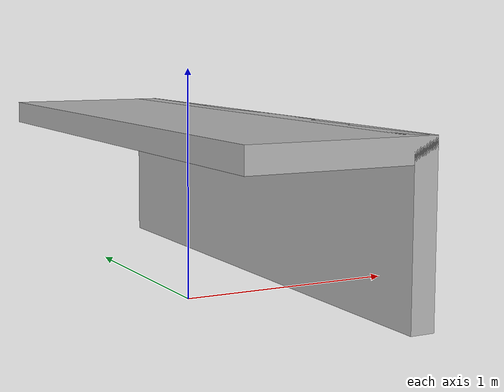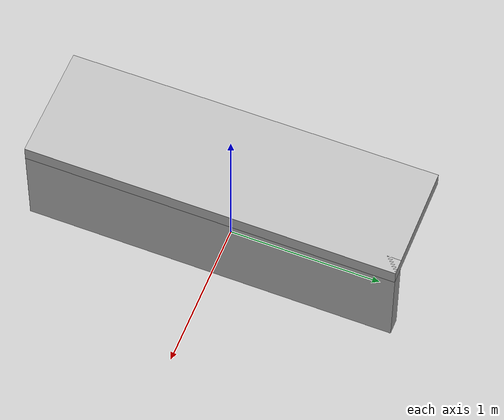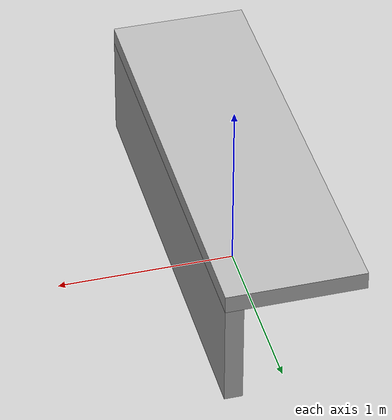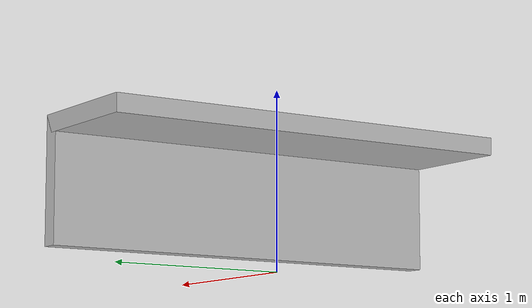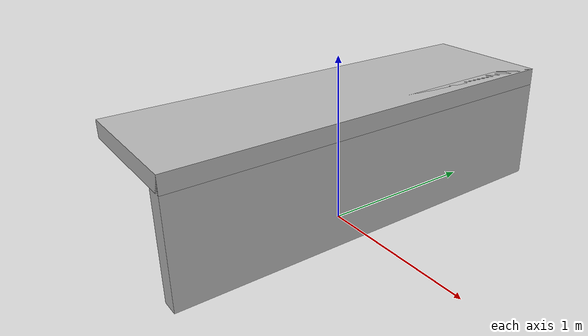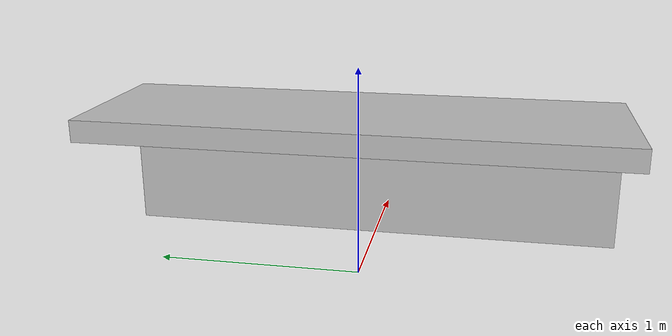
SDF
<?xml version="1.0"?>
<sdf version="1.6">
  <model name="rwc2019/bed">
    <link name="1_link">
      <collision name="1_col">
        <geometry>
          <box>
            <size>0.76 2.42 0.1</size>
          </box>
        </geometry>
      </collision>
      <visual name="1_vis">
        <geometry>
          <box>
            <size>0.76 2.42 0.1</size>
          </box>
        </geometry>
      </visual>
      <pose>0.0 0.0 0.75 0 0 0</pose>
    </link>
    <link name="2_link">
      <collision name="2_col">
        <geometry>
          <box>
            <size>0.1 2.42 0.7</size>
          </box>
        </geometry>
      </collision>
      <visual name="2_vis">
        <geometry>
          <box>
            <size>0.1 2.42 0.7</size>
          </box>
        </geometry>
      </visual>
      <pose>0.33 0.0 0.45 0 0 0</pose>
    </link>
    <link name="on_top_of">
      <virtual_volume name="on_top_of_vv">
        <geometry>
          <box>
            <size>0.72 2.36 0.25</size>
          </box>
        </geometry>
        <pose>0.02 0.0 0.945 0 0 0</pose>
      </virtual_volume>
    </link>
    <link name="in_front_of">
      <virtual_volume name="in_front_of_vv">
        <geometry>
          <box>
            <size>0.2 2.22 0.01</size>
          </box>
        </geometry>
        <pose>0.88 0.0 0.005 0 0 0</pose>
      </virtual_volume>
    </link>
    <static>true</static>
  </model>
</sdf>
